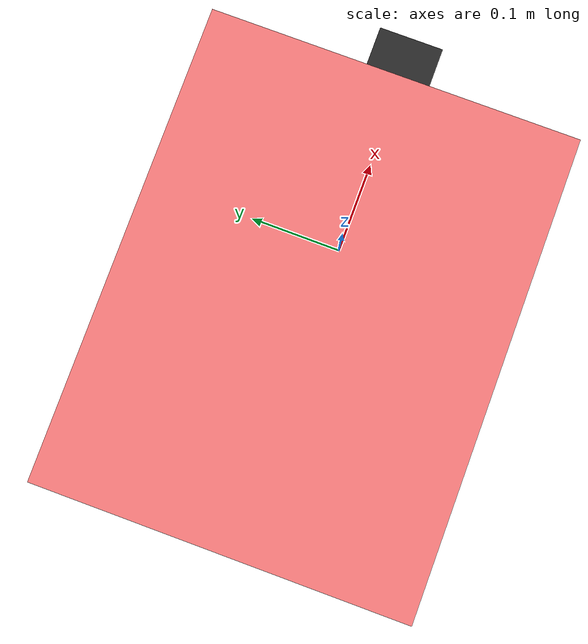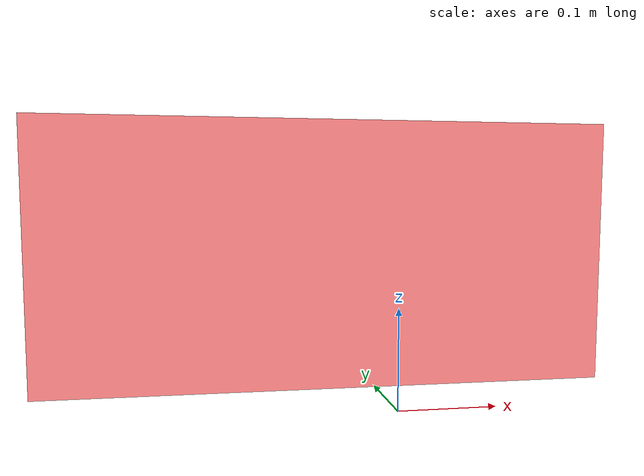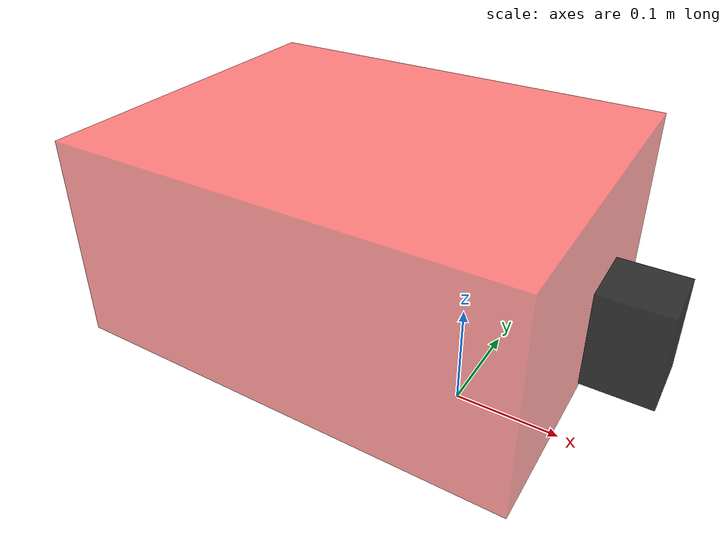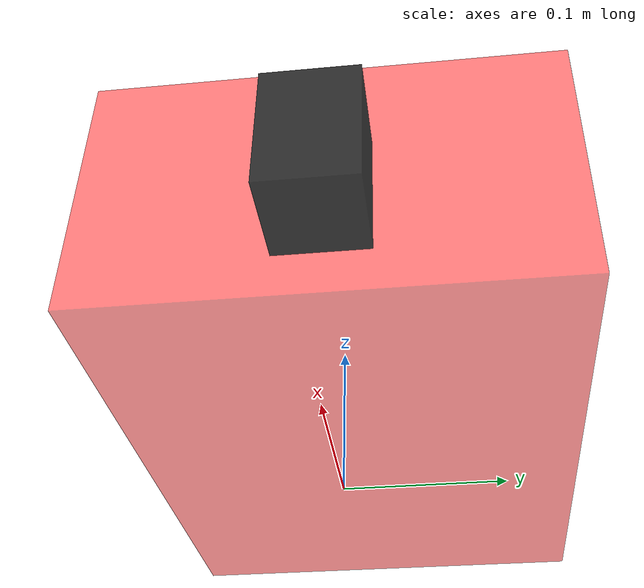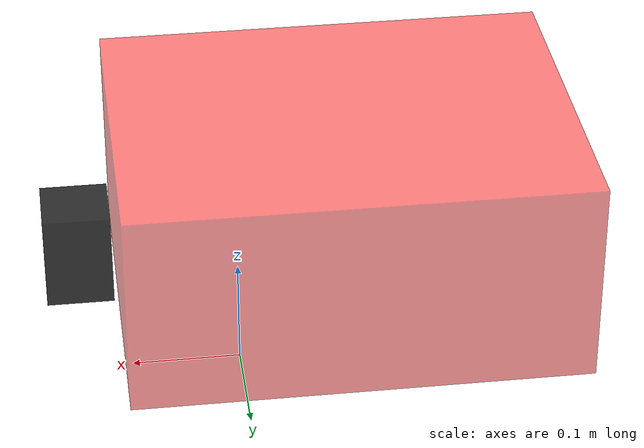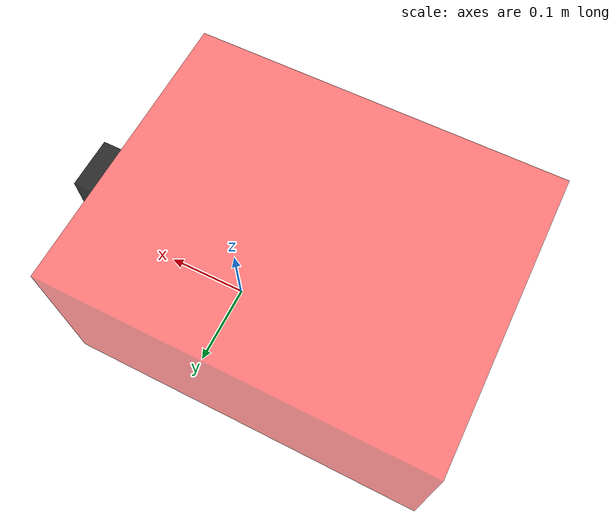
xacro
<?xml version="1.0"?>
<robot xmlns:xacro="http://www.ros.org/wiki/xacro">
    <link name="base_link">
      <collision>
        <origin rpy="0 0 0" xyz="-0.095 0 0.1633"/>
        <geometry>
          <box size="0.41 0.32 0.19"/>
        </geometry>
      </collision>
      <visual>
        <origin rpy="0 0 0" xyz="-0.095 0 0.1633"/>
        <geometry>
          <box size="0.41 0.32 0.19"/>
        </geometry>
        <material name="vehicle_mat">
          <color rgba="1.0 0.0 0.0 0.5"/>
        </material>
      </visual>
    </link>

    <joint name="laser_joint" type="fixed">
      <origin xyz="0.145 0 0.0938" rpy="0 0 0"/>
      <parent link="base_link"/>
      <child link="base_laser_link"/>
    </joint>

    <link name="base_laser_link">
      <collision>
        <origin rpy="0 0 0" xyz="0 0 0.0435"/>
        <geometry>
          <box size="0.06 0.06 0.087"/>
        </geometry>
      </collision>
      <visual>
        <origin rpy="0 0 0" xyz="0 0 0.0435"/>
        <geometry>
          <box size="0.06 0.06 0.087"/>
        </geometry>
        <material name="laser_mat">
          <color rgba="0.0 0.0 0.0 0.8"/>
        </material>
      </visual>
    </link>
</robot>
